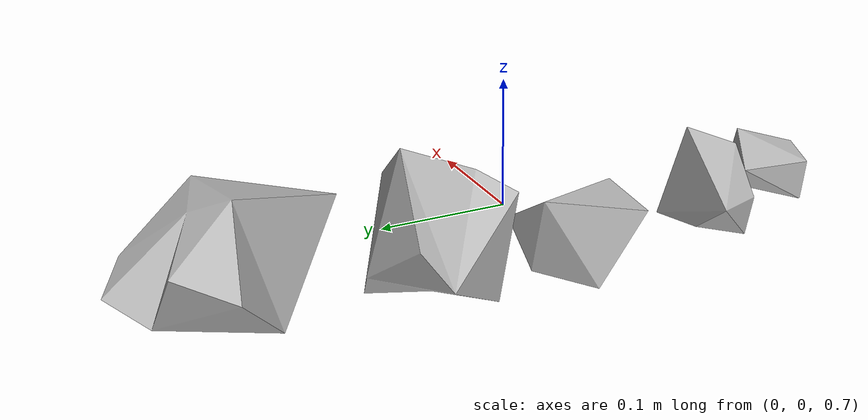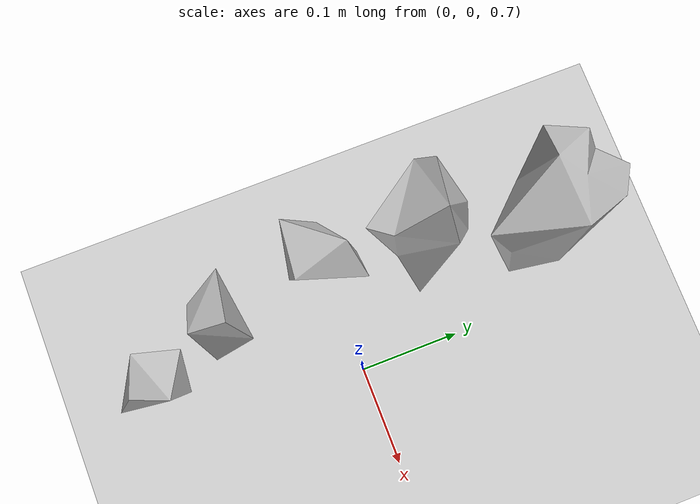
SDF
<sdf version="1.5">
 <world name="default">
  <light name="sun" type="directional">
   <pose>0 0 10 0 -0 0</pose>
   <diffuse>0.8 0.8 0.8 1</diffuse>
   <specular>0.2 0.2 0.2 1</specular>
   <attenuation>
    <range>1000</range>
    <constant>0.9</constant>
    <linear>0.01</linear>
    <quadratic>0.001</quadratic>
   </attenuation>
   <direction>-0.5 0.1 -0.9</direction>
  </light>
  <model name="ground_plane">
   <static>1</static>
   <link name="link">
    <collision name="collision">
     <geometry><plane><normal>0 0 1</normal><size>100 100</size></plane></geometry>
     <surface><friction><ode><mu>100</mu><mu2>50</mu2></ode></friction></surface>
    </collision>
    <visual name="visual">
     <cast_shadows>0</cast_shadows>
     <geometry><plane><normal>0 0 1</normal><size>100 100</size></plane></geometry>
     <material>
      <script><uri>file://media/materials/scripts/gazebo.material</uri><name>Gazebo/Grey</name></script>
     </material>
    </visual>
   </link>
  </model>
  <physics name="default_physics" default="0" type="ode">
   <max_step_size>0.001</max_step_size>
   <real_time_factor>1</real_time_factor>
   <real_time_update_rate>1000</real_time_update_rate>
   <gravity>0 0 -9.8</gravity>
   <magnetic_field>6e-06 2.3e-05 -4.2e-05</magnetic_field>
  </physics>
  <scene><ambient>0.4 0.4 0.4 1</ambient><background>0.7 0.7 0.7 1</background><shadows>1</shadows></scene>
  <spherical_coordinates>
   <surface_model>EARTH_WGS84</surface_model>
   <latitude_deg>0</latitude_deg>
   <longitude_deg>0</longitude_deg>
   <elevation>0</elevation>
   <heading_deg>0</heading_deg>
  </spherical_coordinates>
  <model name="1_poly">
   <link name="base_link">
    <inertial>
     <pose>0.017272 0.003611 0.010638 0 -0 0</pose>
     <mass>1</mass>
     <inertia>
      <ixx>0.00063821</ixx>
      <ixy>0</ixy>
      <ixz>0</ixz>
      <iyy>0.00105141</iyy>
      <iyz>0</iyz>
      <izz>0.00110947</izz>
     </inertia>
    </inertial>
    <collision name="base_link_inertia_collision">
     <geometry>
      <mesh>
       <scale>1 1 1</scale>
       <uri>/home/yoshidah/catkin_ws/src/urdf_models/urdf_models/models/polygons/1_poly.stl</uri>
      </mesh>
     </geometry>
    </collision>
    <visual name="base_link_inertia_visual">
     <geometry>
      <mesh>
       <scale>1 1 1</scale>
       <uri>/home/yoshidah/catkin_ws/src/urdf_models/urdf_models/models/polygons/1_poly.stl</uri>
      </mesh>
     </geometry>
    </visual>
   </link>
   <pose>-0.099683 0.252412 0.734982 -0.390271 0.06483 -1.04525</pose>
  </model>
  <model name="2_poly">
   <link name="base_link">
    <inertial>
     <pose>-0.016006 0.004918 0.008051 0 -0 0</pose>
     <mass>1</mass>
     <inertia>
      <ixx>0.0003455</ixx>
      <ixy>1.48e-06</ixy>
      <ixz>1.628e-05</ixz>
      <iyy>0.00038334</iyy>
      <iyz>1.259e-05</iyz>
      <izz>0.00036534</izz>
     </inertia>
    </inertial>
    <collision name="base_link_inertia_collision">
     <geometry>
      <mesh>
       <scale>1 1 1</scale>
       <uri>/home/yoshidah/catkin_ws/src/urdf_models/urdf_models/models/polygons/2_poly_config_2.dae</uri>
      </mesh>
     </geometry>
    </collision>
    <visual name="base_link_inertia_visual">
     <geometry>
      <mesh>
       <scale>1 1 1</scale>
       <uri>/home/yoshidah/catkin_ws/src/urdf_models/urdf_models/models/polygons/2_poly_config_2.dae</uri>
      </mesh>
     </geometry>
    </visual>
   </link>
   <pose>-0.100421 0.101472 0.730252 1.44525 0.400162 -1.06614</pose>
  </model>
  <model name="3_poly">
   <link name="base_link">
    <inertial>
     <pose>-0.00425 -0.000186 0.00043 0 -0 0</pose>
     <mass>0.5</mass>
     <inertia>
      <ixx>5.698e-05</ixx>
      <ixy>0</ixy>
      <ixz>0</ixz>
      <iyy>7.699e-05</iyy>
      <iyz>0</iyz>
      <izz>8.392e-05</izz>
     </inertia>
    </inertial>
    <collision name="base_link_inertia_collision">
     <geometry>
      <mesh>
       <scale>1 1 1</scale>
       <uri>/home/yoshidah/catkin_ws/src/urdf_models/urdf_models/models/polygons/3_poly.stl</uri>
      </mesh>
     </geometry>
    </collision>
    <visual name="base_link_inertia_visual">
     <geometry>
      <mesh>
       <scale>1 1 1</scale>
       <uri>/home/yoshidah/catkin_ws/src/urdf_models/urdf_models/models/polygons/3_poly.stl</uri>
      </mesh>
     </geometry>
    </visual>
   </link>
   <pose>-0.119756 0.001553 0.724142 -0.592909 0.134703 0.989281</pose>
  </model>
  <model name="4_poly">
   <link name="base_link">
    <inertial>
     <pose>-0.001016 -0.002537 -0.000878 0 -0 0</pose>
     <mass>0.1</mass>
     <inertia>
      <ixx>3.829e-05</ixx>
      <ixy>-1.81e-06</ixy>
      <ixz>1.53e-06</ixz>
      <iyy>3.572e-05</iyy>
      <iyz>6.3e-08</iyz>
      <izz>4.654e-05</izz>
     </inertia>
    </inertial>
    <collision name="base_link_inertia_collision">
     <geometry>
      <mesh>
       <scale>1 1 1</scale>
       <uri>/home/yoshidah/catkin_ws/src/urdf_models/urdf_models/models/polygons/4_poly_2.stl</uri>
      </mesh>
     </geometry>
    </collision>
    <visual name="base_link_inertia_visual">
     <geometry>
      <mesh>
       <scale>1 1 1</scale>
       <uri>/home/yoshidah/catkin_ws/src/urdf_models/urdf_models/models/polygons/4_poly_2.stl</uri>
      </mesh>
     </geometry>
    </visual>
   </link>
   <pose>-0.101241 -0.118947 0.725528 -1.89147 -0.940794 -2.82935</pose>
  </model>
  <model name="5_poly">
   <link name="base_link">
    <inertial>
     <pose>0.000876 0.001079 -0.001463 0 -0 0</pose>
     <mass>1.2</mass>
     <inertia>
      <ixx>2.472e-05</ixx>
      <ixy>0</ixy>
      <ixz>2.11758e-22</ixz>
      <iyy>2.012e-05</iyy>
      <iyz>0</iyz>
      <izz>3.289e-05</izz>
     </inertia>
    </inertial>
    <collision name="base_link_inertia_collision">
     <geometry>
      <mesh>
       <scale>1 1 1</scale>
       <uri>/home/yoshidah/catkin_ws/src/urdf_models/urdf_models/models/polygons/5_poly.stl</uri>
      </mesh>
     </geometry>
    </collision>
    <visual name="base_link_inertia_visual">
     <geometry>
      <mesh>
       <scale>1 1 1</scale>
       <uri>/home/yoshidah/catkin_ws/src/urdf_models/urdf_models/models/polygons/5_poly.stl</uri>
      </mesh>
     </geometry>
    </visual>
   </link>
   <pose>-0.063742 -0.199145 0.720626 0.17991 -0.042991 0.045278</pose>
  </model>
 </world>
</sdf>
